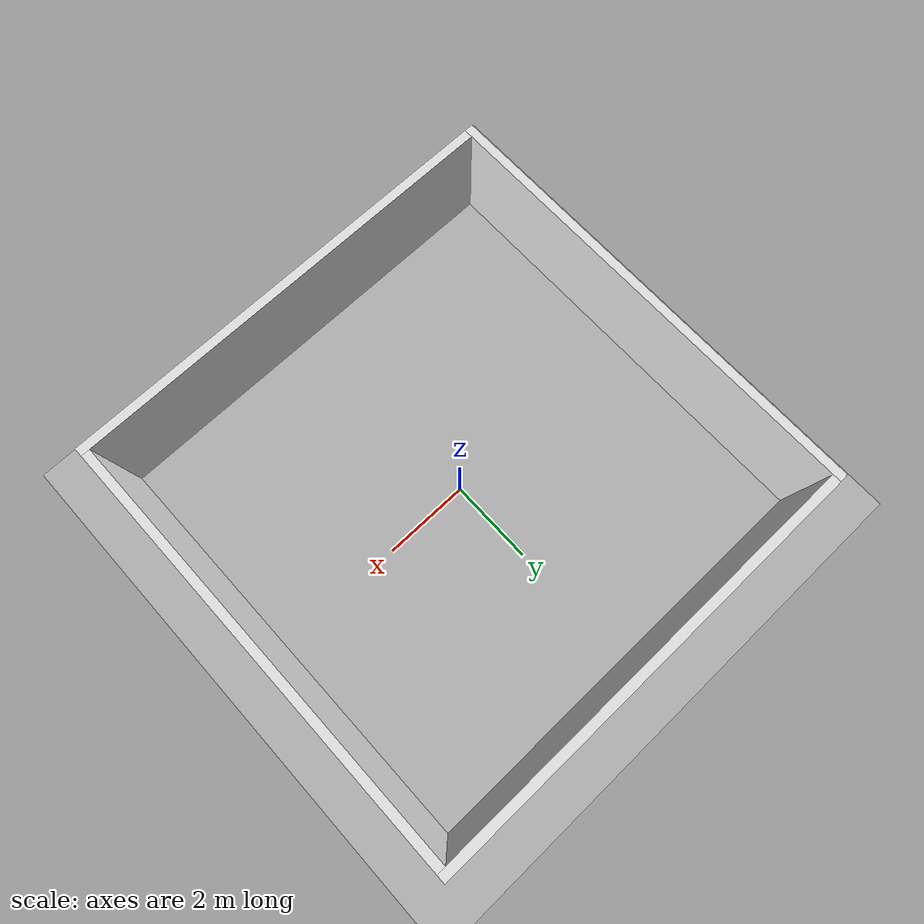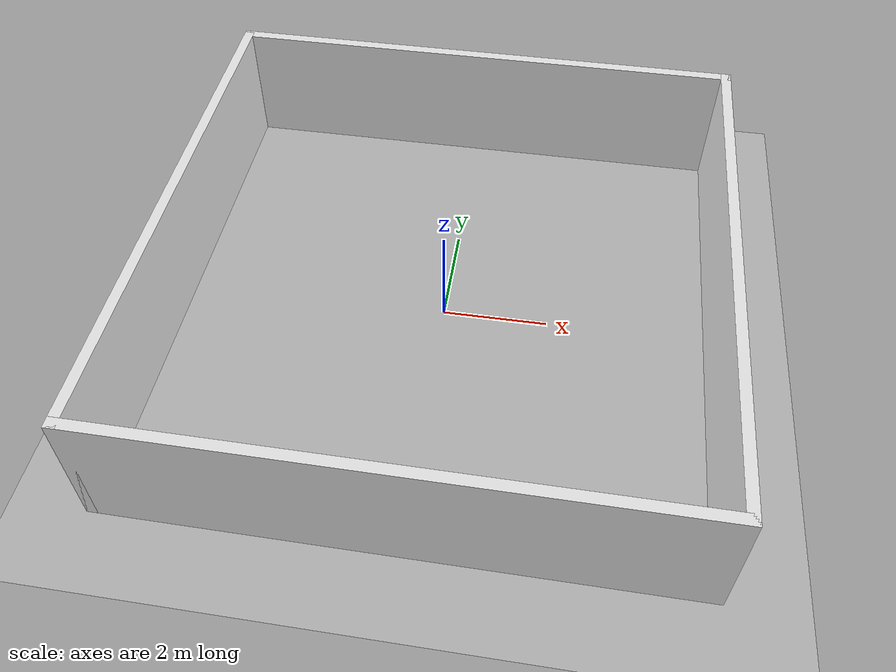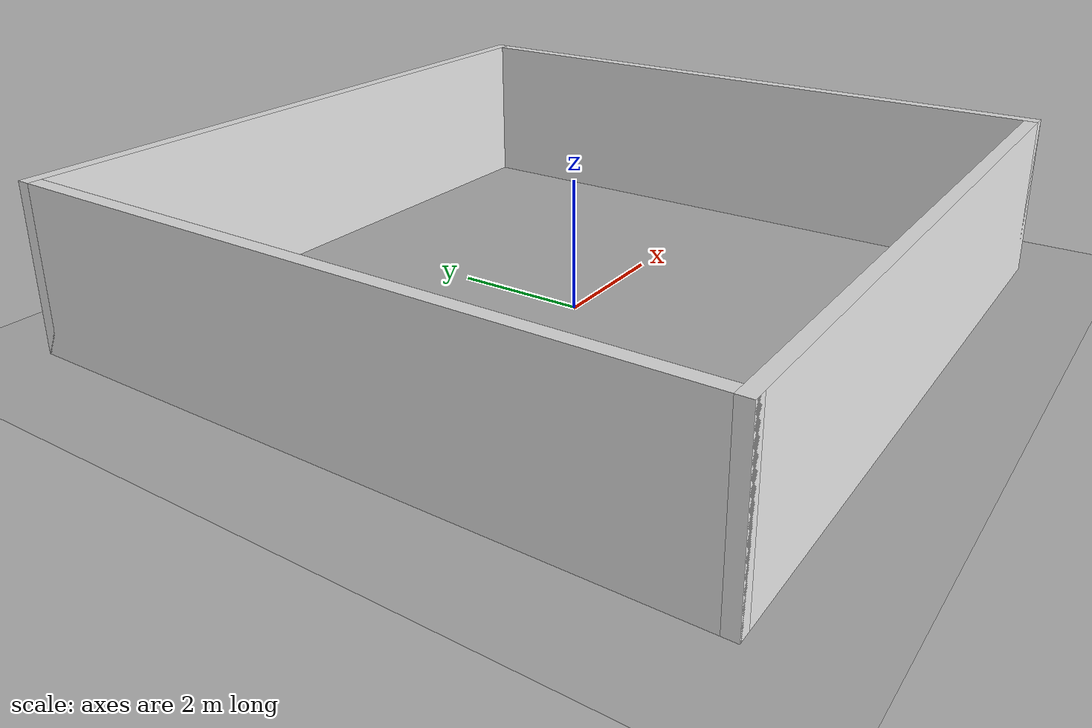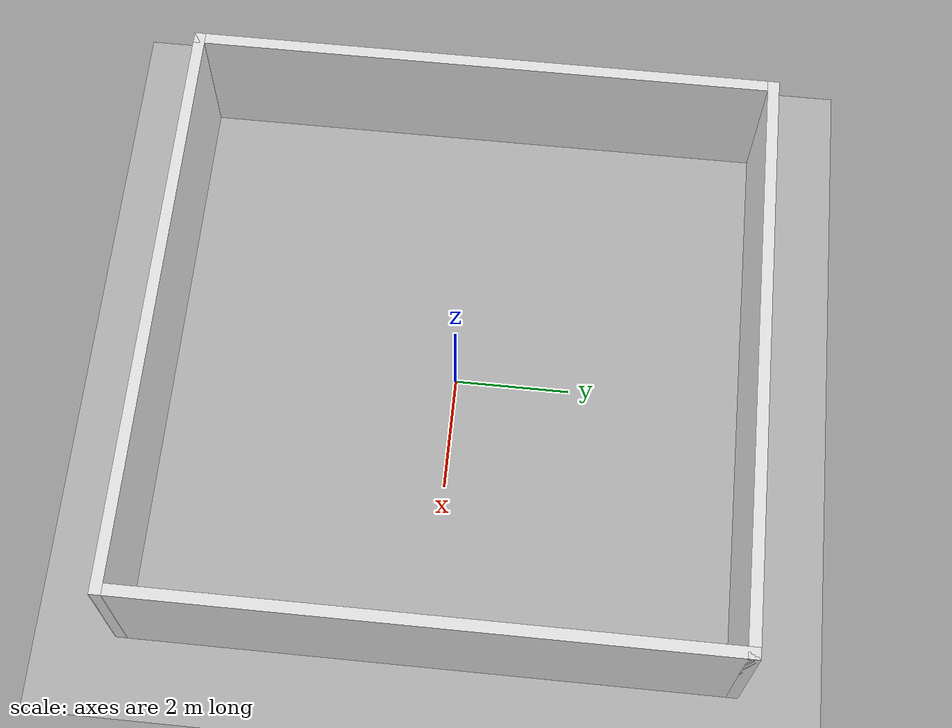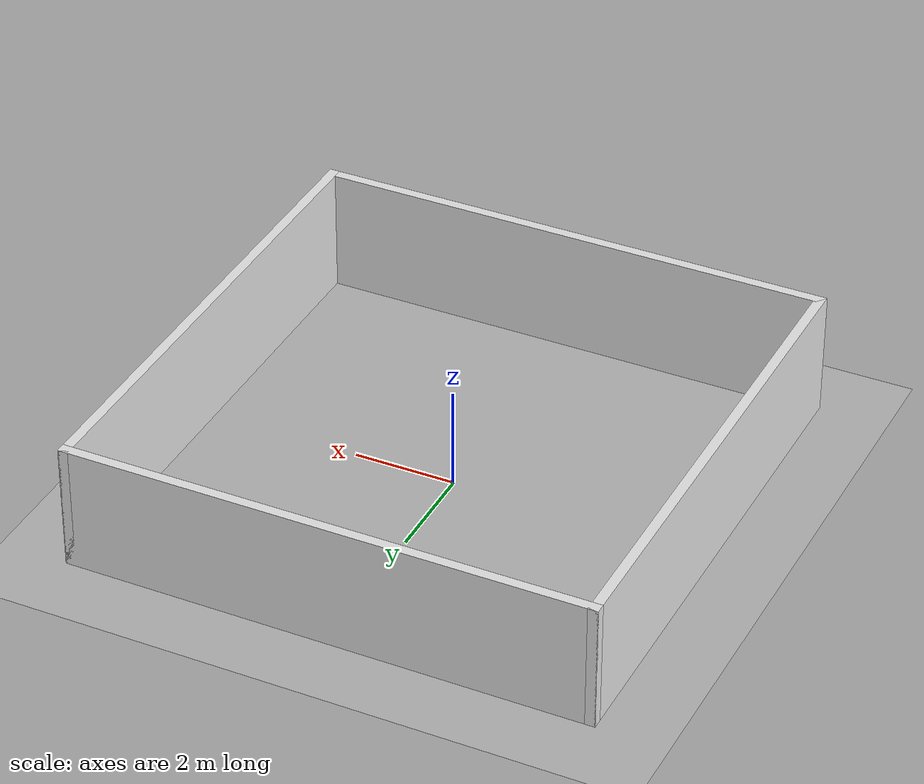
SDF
<?xml version="1.0" encoding="ASCII"?>
<sdf version="1.7">
  <world name="warehouse">

    <physics type="ode">
      <max_step_size>0.003</max_step_size>
      <real_time_factor>1.0</real_time_factor>
    </physics>

    <plugin name="gz::sim::systems::Physics"         filename="gz-sim-physics-system"/>
    <plugin name="gz::sim::systems::UserCommands"    filename="gz-sim-user-commands-system"/>
    <plugin name="gz::sim::systems::SceneBroadcaster" filename="gz-sim-scene-broadcaster-system"/>
    <plugin name="gz::sim::systems::Contact"         filename="gz-sim-contact-system"/>
    <!-- Sensors plugin intentionally omitted: see warehouse.sdf note about crashes.
         Gz-sim loads it automatically when the robot model with sensor elements spawns. -->

    <scene>
      <ambient>1 1 1 1</ambient>
      <background>0.3 0.7 0.9 1</background>
      <shadows>0</shadows>
      <grid>false</grid>
    </scene>

    <!-- Ground plane -->
    <model name="ground_plane">
      <static>true</static>
      <link name="link">
        <collision name="collision">
          <geometry>
            <plane><normal>0 0 1</normal><size>1 1</size></plane>
          </geometry>
        </collision>
        <visual name="visual">
          <geometry>
            <plane><normal>0 0 1</normal><size>20 20</size></plane>
          </geometry>
          <material>
            <ambient>0.7 0.7 0.7 1</ambient>
            <diffuse>0.7 0.7 0.7 1</diffuse>
          </material>
        </visual>
      </link>
    </model>

    <!-- Room walls: 10 × 10 m interior, 0.2 m thick, 2.5 m tall.
         Solid collision so the LiDAR sees them and pedestrians stay inside. -->
    <model name="wall_north">
      <static>true</static><pose>0 5.1 1.25 0 0 0</pose>
      <link name="link">
        <collision name="col"><geometry><box><size>10.4 0.2 2.5</size></box></geometry></collision>
        <visual name="vis">
          <geometry><box><size>10.4 0.2 2.5</size></box></geometry>
          <material><ambient>0.9 0.9 0.9 1</ambient><diffuse>0.9 0.9 0.9 1</diffuse></material>
        </visual>
      </link>
    </model>

    <model name="wall_south">
      <static>true</static><pose>0 -5.1 1.25 0 0 0</pose>
      <link name="link">
        <collision name="col"><geometry><box><size>10.4 0.2 2.5</size></box></geometry></collision>
        <visual name="vis">
          <geometry><box><size>10.4 0.2 2.5</size></box></geometry>
          <material><ambient>0.9 0.9 0.9 1</ambient><diffuse>0.9 0.9 0.9 1</diffuse></material>
        </visual>
      </link>
    </model>

    <model name="wall_east">
      <static>true</static><pose>5.1 0 1.25 0 0 0</pose>
      <link name="link">
        <collision name="col"><geometry><box><size>0.2 10.4 2.5</size></box></geometry></collision>
        <visual name="vis">
          <geometry><box><size>0.2 10.4 2.5</size></box></geometry>
          <material><ambient>0.9 0.9 0.9 1</ambient><diffuse>0.9 0.9 0.9 1</diffuse></material>
        </visual>
      </link>
    </model>

    <model name="wall_west">
      <static>true</static><pose>-5.1 0 1.25 0 0 0</pose>
      <link name="link">
        <collision name="col"><geometry><box><size>0.2 10.4 2.5</size></box></geometry></collision>
        <visual name="vis">
          <geometry><box><size>0.2 10.4 2.5</size></box></geometry>
          <material><ambient>0.9 0.9 0.9 1</ambient><diffuse>0.9 0.9 0.9 1</diffuse></material>
        </visual>
      </link>
    </model>

  </world>
</sdf>
